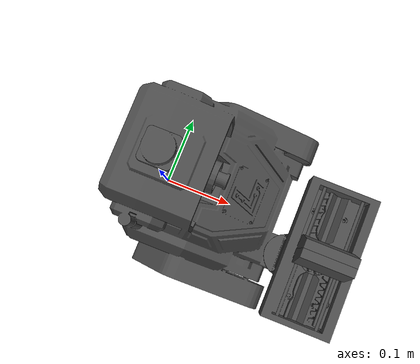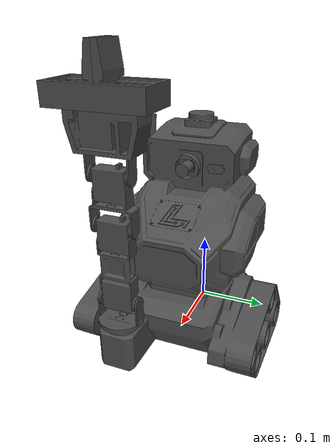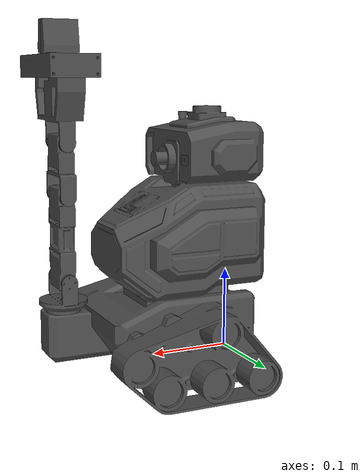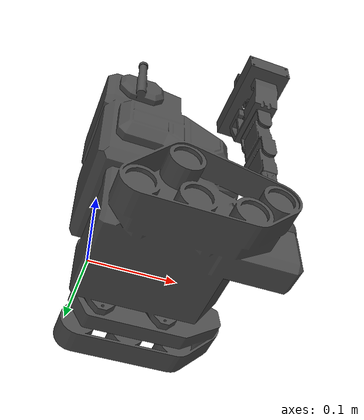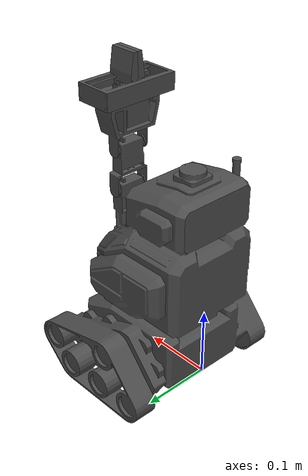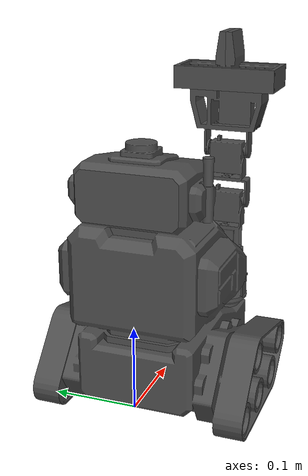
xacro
<?xml version="1.0" encoding="utf-8"?>
<robot xmlns:xacro="http://ros.org/wiki/xacro"
  name="wilson">

  <link name = "base_link">
  </link>

  <link
    name="body_link">
    <inertial>
      <origin
        xyz="0.07097 -0.00089885 0.11258"
        rpy="0 0 0" />
      <mass
        value="3" />
      <inertia
        ixx="0.017986"
        ixy="0.0006756"
        ixz="0.00083241"
        iyy="0.020129"
        iyz="-8.9186E-05"
        izz="0.026466" />

    </inertial>
    <visual>
      <origin
        xyz="0 0 0"
        rpy="0 0 0" />
      <geometry>
        <mesh
          filename="package://wilson/meshes/body_link.STL" />
      </geometry>
      <material
        name="">
        <color
          rgba="0.3 0.3 0.3 1" />
      </material>
    </visual>
    <collision>
      <origin
        xyz="0 0 0"
        rpy="0 0 0" />
      <geometry>
        <mesh
          filename="package://wilson/collision_meshes/body_link.STL" />
      </geometry>
    </collision>
  </link>
  <joint
    name="body_joint"
    type="fixed">
    <origin
      xyz="0 0 0"
      rpy="0 0 0" />
    <parent
      link="base_link" />
    <child
      link="body_link" />
    <axis
      xyz="0 0 0" />
  </joint>
  <link
    name="laser_frame">
    <inertial>
      <origin
        xyz="-2.1176E-07 -4.0923E-05 -0.011888"
        rpy="0 0 0" />
      <mass
        value="0.001" />
      <inertia
        ixx="5.4479E-06"
        ixy="9.7064E-14"
        ixz="5.3555E-11"
        iyy="5.5226E-06"
        iyz="8.257E-09"
        izz="9.1788E-06" />
    </inertial>
    <visual>
      <origin
        xyz="0 0 0"
        rpy="0 0 0" />
      <geometry>
        <mesh
          filename="package://wilson/meshes/laser_frame.STL" />
      </geometry>
      <material
        name="">
        <color
          rgba="0.3 0.3 0.3 1" />
      </material>
    </visual>
    <collision>
      <origin
        xyz="0 0 0"
        rpy="0 0 0" />
      <geometry>
        <mesh
          filename="package://wilson/collision_meshes/laser_frame.STL" />
      </geometry>
    </collision>
  </link>
  <joint
    name="laser_joint"
    type="fixed">
    <origin
      xyz="0.028815 0.00026069 0.30272"
      rpy="0 0 0" />
    <parent
      link="body_link" />
    <child
      link="laser_frame" />
    <axis
      xyz="0 0 0" />
  </joint>
  <link
    name="camera_link">
    <inertial>
      <origin
        xyz="-0.017796 0 -5.5511E-17"
        rpy="0 0 0" />
      <mass
        value="0.0084406" />
      <inertia
        ixx="8.8741E-07"
        ixy="1.319E-22"
        ixz="-5.0892E-22"
        iyy="1.1543E-06"
        iyz="-2.074E-22"
        izz="1.1543E-06" />
    </inertial>
    <visual>
      <origin
        xyz="0 0 0"
        rpy="0 0 0" />
      <geometry>
        <mesh
          filename="package://wilson/meshes/camera_link.STL" />
      </geometry>
      <material
        name="">
        <color
          rgba="0.3 0.3 0.3 1" />
      </material>
    </visual>
    <collision>
      <origin
        xyz="0 0 0"
        rpy="0 0 0" />
      <geometry>
        <mesh
          filename="package://wilson/collision_meshes/camera_link.STL" />
      </geometry>
    </collision>
  </link>
  <joint
    name="camera_joint"
    type="fixed">
    <origin
      xyz="0.10065 0.00016353 0.24572"
      rpy="0 0 0" />
    <parent
      link="body_link" />
    <child
      link="camera_link" />
    <axis
      xyz="0 0 0" />
  </joint>
  <!-- Sensor origin link offset 45cm behind the camera housing to work around Open3D's 0.5m minimum clip distance -->
  <link
    name="camera_sensor_link">
  </link>
  <joint
    name="camera_sensor_joint"
    type="fixed">
    <origin
      xyz="-0.25 0 0"
      rpy="0 0 0" />
    <parent
      link="camera_link" />
    <child
      link="camera_sensor_link" />
    <axis
      xyz="0 0 0" />
  </joint>
  <link
    name="depth_camera_link">
    <inertial>
      <origin
        xyz="-0.0035178 2.6724E-05 0"
        rpy="0 0 0" />
      <mass
        value="0.0035923" />
      <inertia
        ixx="7.2887E-07"
        ixy="-2.8971E-10"
        ixz="-3.3403E-23"
        iyy="3.6036E-07"
        iyz="-3.7283E-23"
        izz="3.7832E-07" />
    </inertial>
    <visual>
      <origin
        xyz="0 0 0"
        rpy="0 0 0" />
      <geometry>
        <mesh
          filename="package://wilson/meshes/depth_camera_link.STL" />
      </geometry>
      <material
        name="">
        <color
          rgba="0.3 0.3 0.3 1" />
      </material>
    </visual>
    <collision>
      <origin
        xyz="0 0 0"
        rpy="0 0 0" />
      <geometry>
        <mesh
          filename="package://wilson/collision_meshes/depth_camera_link.STL" />
      </geometry>
    </collision>
  </link>
  <joint
    name="depth_camera_joint"
    type="fixed">
    <origin
      xyz="0.07765 0.038164 0.24572"
      rpy="0 0 0" />
    <parent
      link="body_link" />
    <child
      link="depth_camera_link" />
    <axis
      xyz="0 0 0" />
  </joint>
  <!-- Sensor origin link offset 25cm behind the camera housing to work around Open3D's 0.5m minimum clip distance -->
  <link
    name="depth_camera_sensor_link">
  </link>
  <joint
    name="depth_camera_sensor_joint"
    type="fixed">
    <origin
      xyz="-0.25 0 0"
      rpy="0 0 0" />
    <parent
      link="depth_camera_link" />
    <child
      link="depth_camera_sensor_link" />
    <axis
      xyz="0 0 0" />
  </joint>
  <link
    name="link_1">
    <inertial>
      <origin
        xyz="0 0 0"
        rpy="0 0 0" />
      <mass
        value="0.001" />
      <inertia
        ixx="0.001"
        ixy="0.001"
        ixz="0.001"
        iyy="0.001"
        iyz="0.001"
        izz="0.001" />
    </inertial>
    <visual>
      <origin
        xyz="0 0 0"
        rpy="0 0 0" />
      <geometry>
        <mesh
          filename="package://wilson/meshes/link_1.STL" />
      </geometry>
      <material
        name="">
        <color
          rgba="0.3 0.3 0.3 1" />
      </material>
    </visual>
    <collision>
      <origin
        xyz="0 0 0"
        rpy="0 0 0" />
      <geometry>
        <mesh
          filename="package://wilson/collision_meshes/link_1.STL" />
      </geometry>
    </collision>
  </link>
  <joint
    name="joint_1"
    type="revolute">
    <origin
      xyz="0.20284 -0.0445 0.055968"
      rpy="0 0 0" />
    <parent
      link="body_link" />
    <child
      link="link_1" />
    <axis
      xyz="0 0 1" />
    <limit
      lower="-1.5708"
      upper="1.3090"
      effort="100"
      velocity="1.0" />
  </joint>
  <link
    name="link_2">
    <inertial>
      <origin
        xyz="0.052 1.1102E-16 -4.8862E-05"
        rpy="0 0 0" />
      <mass
        value="0.001" />
      <inertia
        ixx="1.8027E-05"
        ixy="-5.0835E-12"
        ixz="-3.4406E-22"
        iyy="2.6081E-05"
        iyz="7.6203E-20"
        izz="1.3913E-05" />
    </inertial>
    <visual>
      <origin
        xyz="0 0 0"
        rpy="0 0 0" />
      <geometry>
        <mesh
          filename="package://wilson/meshes/link_2.STL" />
      </geometry>
      <material
        name="">
        <color
          rgba="0.3 0.3 0.3 1" />
      </material>
    </visual>
    <collision>
      <origin
        xyz="0 0 0"
        rpy="0 0 0" />
      <geometry>
        <mesh
          filename="package://wilson/collision_meshes/link_2.STL" />
      </geometry>
    </collision>
  </link>
  <joint
    name="joint_2"
    type="revolute">
    <origin
      xyz="0 -0.0002 0.041"
      rpy="1.5708 -1.5708 0" />
    <parent
      link="link_1" />
    <child
      link="link_2" />
    <axis
      xyz="0 0 1" />
    <limit
      lower="-1.7453"
      upper="1.7453"
      effort="100"
      velocity="1.0" />
  </joint>
  <link
    name="link_3">
    <inertial>
      <origin
        xyz="0.048456 4.4264E-09 0.00016422"
        rpy="0 0 0" />
      <mass
        value="0.001" />
      <inertia
        ixx="1.0479E-05"
        ixy="-2.5418E-12"
        ixz="5.8294E-08"
        iyy="1.4519E-05"
        iyz="-7.3801E-13"
        izz="6.8191E-06" />
    </inertial>
    <visual>
      <origin
        xyz="0 0 0"
        rpy="0 0 0" />
      <geometry>
        <mesh
          filename="package://wilson/meshes/link_3.STL" />
      </geometry>
      <material
        name="">
        <color
          rgba="0.3 0.3 0.3 1" />
      </material>
    </visual>
    <collision>
      <origin
        xyz="0 0 0"
        rpy="0 0 0" />
      <geometry>
        <mesh
          filename="package://wilson/collision_meshes/link_3.STL" />
      </geometry>
    </collision>
  </link>
  <joint
    name="joint_3"
    type="revolute">
    <origin
      xyz="0.10355 0 0.00025"
      rpy="0 0 0" />
    <parent
      link="link_2" />
    <child
      link="link_3" />
    <axis
      xyz="0 0 1" />
    <limit
      lower="-2.1817"
      upper="2.1817"
      effort="100"
      velocity="1.0" />
  </joint>
  <link
    name="link_4">
    <inertial>
      <origin
        xyz="0.051407 -1.2493E-05 0.00067072"
        rpy="0 0 0" />
      <mass
        value="0.0001" />
      <inertia
        ixx="5.9516E-05"
        ixy="-1.66E-10"
        ixz="2.2283E-06"
        iyy="7.3946E-05"
        iyz="-1.2305E-09"
        izz="2.67E-05" />
    </inertial>
    <visual>
      <origin
        xyz="0 0 0"
        rpy="0 0 0" />
      <geometry>
        <mesh
          filename="package://wilson/meshes/link_4.STL" />
      </geometry>
      <material
        name="">
        <color
          rgba="0.3 0.3 0.3 1" />
      </material>
    </visual>
    <collision>
      <origin
        xyz="0 0 0"
        rpy="0 0 0" />
      <geometry>
        <mesh
          filename="package://wilson/collision_meshes/link_4.STL" />
      </geometry>
    </collision>
  </link>
  <joint
    name="joint_4"
    type="revolute">
    <origin
      xyz="0.0639 0 0.0005"
      rpy="0 0 0" />
    <parent
      link="link_3" />
    <child
      link="link_4" />
    <axis
      xyz="0 0 1" />
    <limit
      lower="-2.0944"
      upper="2.0944"
      effort="100"
      velocity="1.0" />
  </joint>
  <link
    name="gripper_base">
    <inertial>
      <origin
        xyz="0.010715 1.0389E-05 1.8295E-05"
        rpy="0 0 0" />
      <mass
        value="0.001" />
      <inertia
        ixx="0.00012973"
        ixy="-6.8552E-09"
        ixz="-8.4335E-10"
        iyy="9.4298E-05"
        iyz="9.6632E-09"
        izz="4.7314E-05" />
    </inertial>
    <visual>
      <origin
        xyz="0 0 0"
        rpy="0 0 0" />
      <geometry>
        <mesh
          filename="package://wilson/meshes/gripper_base.STL" />
      </geometry>
      <material
        name="">
        <color
          rgba="0.3 0.3 0.3 1" />
      </material>
    </visual>
    <collision>
      <origin
        xyz="0 0 0"
        rpy="0 0 0" />
      <geometry>
        <mesh
          filename="package://wilson/collision_meshes/gripper_base.STL" />
      </geometry>
    </collision>
  </link>
  <joint
    name="gripper_base_joint"
    type="fixed">
    <origin
      xyz="0.077347 -0.00023665 0.00025"
      rpy="0 0 0" />
    <parent
      link="link_4" />
    <child
      link="gripper_base" />
    <axis
      xyz="0 0 0" />
  </joint>
  <link
    name="gripper_left_finger">
    <inertial>
      <origin
        xyz="0.013473 0.0020475 0.001721"
        rpy="0 0 0" />
      <mass
        value="0.001" />
      <inertia
        ixx="6.2762E-06"
        ixy="5.3005E-07"
        ixz="-5.6448E-07"
        iyy="4.6087E-06"
        iyz="9.4001E-07"
        izz="6.0257E-06" />
    </inertial>
    <visual>
      <origin
        xyz="0 0 0"
        rpy="0 0 0" />
      <geometry>
        <mesh
          filename="package://wilson/meshes/gripper_left_finger.STL" />
      </geometry>
      <material
        name="">
        <color
          rgba="0.3 0.3 0.3 1" />
      </material>
    </visual>
    <collision>
      <origin
        xyz="0 0 0"
        rpy="0 0 0" />
      <geometry>
        <mesh
          filename="package://wilson/collision_meshes/gripper_left_finger.STL" />
      </geometry>
    </collision>
  </link>
  <joint
    name="gripper_left_finger_joint"
    type="prismatic">
    <origin
      xyz="0.0272 0 0"
      rpy="0 0 0" />
    <parent
      link="gripper_base" />
    <child
      link="gripper_left_finger" />
    <axis
      xyz="0 0 1" />
    <limit
      lower="-0.001"
      upper="0.05"
      effort="0"
      velocity="0" />
  </joint>
  <link
    name="gripper_right_finger">
    <inertial>
      <origin
        xyz="0.013473 -0.0020475 -0.001721"
        rpy="0 0 0" />
      <mass
        value="0.001" />
      <inertia
        ixx="6.2762E-06"
        ixy="-5.3005E-07"
        ixz="5.6448E-07"
        iyy="4.6087E-06"
        iyz="9.4001E-07"
        izz="6.0257E-06" />
    </inertial>
    <visual>
      <origin
        xyz="0 0 0"
        rpy="0 0 0" />
      <geometry>
        <mesh
          filename="package://wilson/meshes/gripper_right_finger.STL" />
      </geometry>
      <material
        name="">
        <color
          rgba="0.3 0.3 0.3 1" />
      </material>
    </visual>
    <collision>
      <origin
        xyz="0 0 0"
        rpy="0 0 0" />
      <geometry>
        <mesh
          filename="package://wilson/collision_meshes/gripper_right_finger.STL" />
      </geometry>
    </collision>
  </link>
  <joint
    name="gripper_right_finger_joint"
    type="prismatic">
    <origin
      xyz="0.0272 0 0"
      rpy="0 0 0" />
    <parent
      link="gripper_base" />
    <child
      link="gripper_right_finger" />
    <axis
      xyz="0 0 1" />
    <limit
      lower="-0.05"
      upper="0.001"
      effort="0"
      velocity="0" />
  </joint>

</robot>
